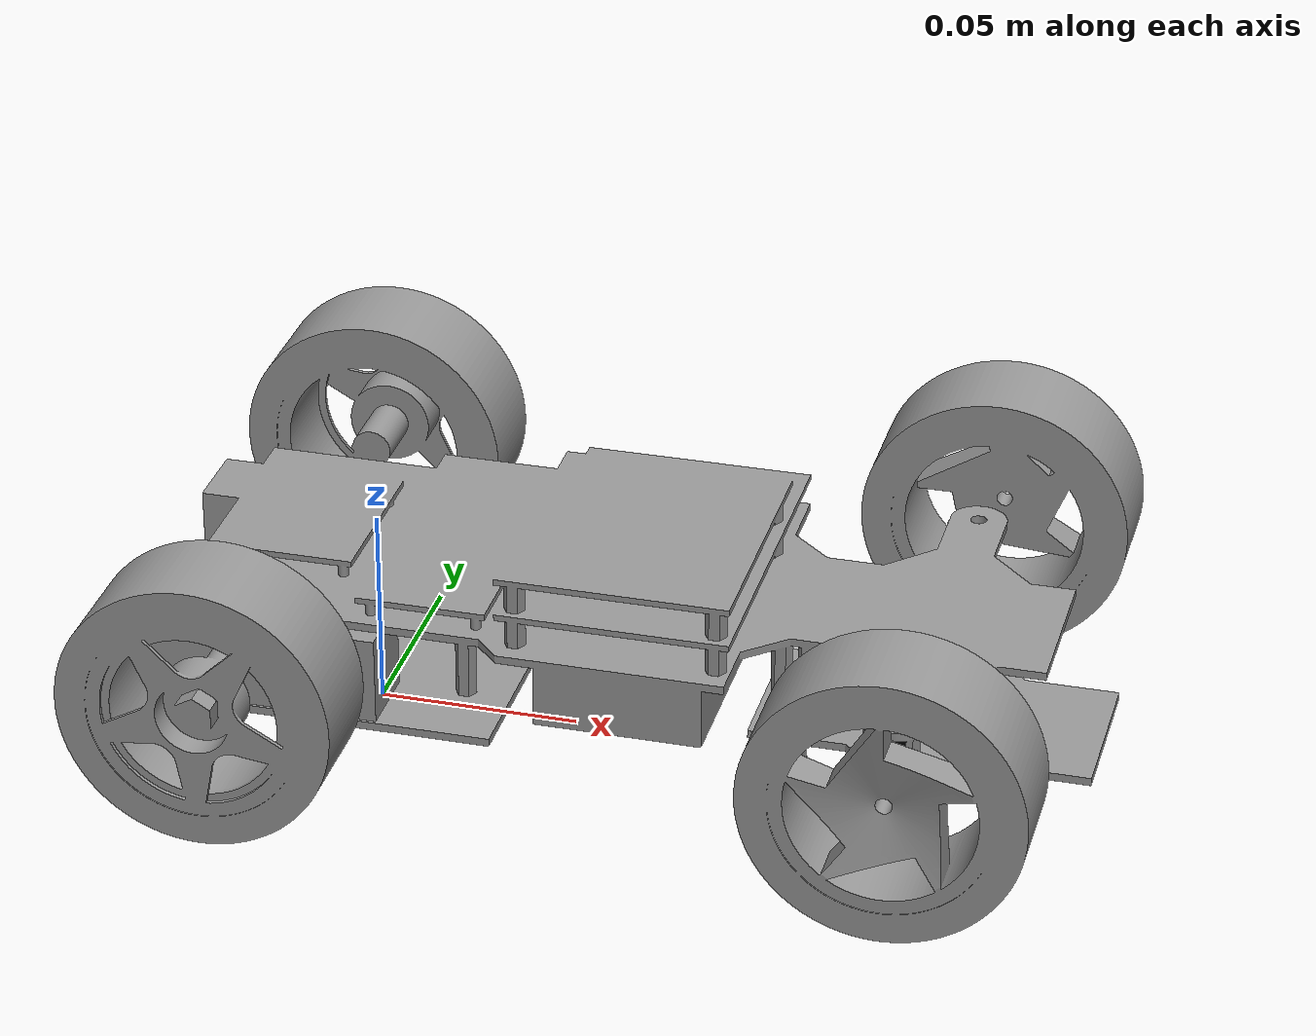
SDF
<?xml version='1.0'?>
<sdf version='1.6'>
  <model name='PiCar-X'>
    <link name='chassis'>
      <inertial>
        <mass>1</mass>
        <inertia>
          <ixx>0.166667</ixx>
          <ixy>0</ixy>
          <ixz>0</ixz>
          <iyy>0.166667</iyy>
          <iyz>0</iyz>
          <izz>0.166667</izz>
        </inertia>
        <pose frame=''>0 0 0 0 -0 0</pose>
      </inertial>
      <pose frame=''>0 0 0.015 0 -0 0</pose>
      <gravity>1</gravity>
      <self_collide>0</self_collide>
      <kinematic>0</kinematic>
      <enable_wind>0</enable_wind>
      <visual name='visual'>
        <pose frame=''>0 0 0 0 -0 0</pose>
        <geometry>
          <mesh>
            <uri>/root/catkin_ws/src/picarx_description/meshes/Chassis.dae</uri>
            <scale>1 1 1</scale>
          </mesh>
        </geometry>
        <material>
          <lighting>1</lighting>
          <script>
            <uri>file://media/materials/scripts/gazebo.material</uri>
            <name>Gazebo/Grey</name>
          </script>
          <shader type='vertex'>
            <normal_map>__default__</normal_map>
          </shader>
          <ambient>0.3 0.3 0.3 1</ambient>
          <diffuse>0.7 0.7 0.7 1</diffuse>
          <specular>0.01 0.01 0.01 1</specular>
          <emissive>0 0 0 1</emissive>
        </material>
        <transparency>0</transparency>
        <cast_shadows>1</cast_shadows>
      </visual>
      <collision name='collision'>
        <laser_retro>0</laser_retro>
        <max_contacts>10</max_contacts>
        <pose frame=''>0 0 0 0 -0 0</pose>
        <geometry>
          <mesh>
            <uri>/root/catkin_ws/src/picarx_description/meshes/Chassis.dae</uri>
            <scale>1 1 1</scale>
          </mesh>
        </geometry>
        <surface>
          <friction>
            <ode>
              <mu>1</mu>
              <mu2>1</mu2>
              <fdir1>0 0 0</fdir1>
              <slip1>0</slip1>
              <slip2>0</slip2>
            </ode>
            <torsional>
              <coefficient>1</coefficient>
              <patch_radius>0</patch_radius>
              <surface_radius>0</surface_radius>
              <use_patch_radius>1</use_patch_radius>
              <ode>
                <slip>0</slip>
              </ode>
            </torsional>
          </friction>
          <bounce>
            <restitution_coefficient>0</restitution_coefficient>
            <threshold>1e+06</threshold>
          </bounce>
          <contact>
            <collide_without_contact>0</collide_without_contact>
            <collide_without_contact_bitmask>1</collide_without_contact_bitmask>
            <collide_bitmask>1</collide_bitmask>
            <ode>
              <soft_cfm>0</soft_cfm>
              <soft_erp>0.2</soft_erp>
              <kp>1e+13</kp>
              <kd>1</kd>
              <max_vel>0.01</max_vel>
              <min_depth>0</min_depth>
            </ode>
            <bullet>
              <split_impulse>1</split_impulse>
              <split_impulse_penetration_threshold>-0.01</split_impulse_penetration_threshold>
              <soft_cfm>0</soft_cfm>
              <soft_erp>0.2</soft_erp>
              <kp>1e+13</kp>
              <kd>1</kd>
            </bullet>
          </contact>
        </surface>
      </collision>
    </link>
    <link name='wheelrearright'>
      <inertial>
        <mass>1</mass>
        <inertia>
          <ixx>0.166667</ixx>
          <ixy>0</ixy>
          <ixz>0</ixz>
          <iyy>0.166667</iyy>
          <iyz>0</iyz>
          <izz>0.166667</izz>
        </inertia>
        <pose frame=''>0 0 0 0 -0 0</pose>
      </inertial>
      <pose frame=''>-0.019498 0.069262 0.03808 -1.5708 -0 0</pose>
      <gravity>1</gravity>
      <self_collide>0</self_collide>
      <kinematic>0</kinematic>
      <enable_wind>0</enable_wind>
      <visual name='visual'>
        <pose frame=''>0 0 0 0 -0 0</pose>
        <geometry>
          <mesh>
            <uri>/root/catkin_ws/src/picarx_description/meshes/WheelRearRight.dae</uri>
            <scale>1 1 1</scale>
          </mesh>
        </geometry>
        <material>
          <lighting>1</lighting>
          <script>
            <uri>file://media/materials/scripts/gazebo.material</uri>
            <name>Gazebo/Grey</name>
          </script>
          <shader type='vertex'>
            <normal_map>__default__</normal_map>
          </shader>
          <ambient>0.3 0.3 0.3 1</ambient>
          <diffuse>0.7 0.7 0.7 1</diffuse>
          <specular>0.01 0.01 0.01 1</specular>
          <emissive>0 0 0 1</emissive>
        </material>
        <transparency>0</transparency>
        <cast_shadows>1</cast_shadows>
      </visual>
      <collision name='collision'>
        <laser_retro>0</laser_retro>
        <max_contacts>10</max_contacts>
        <pose frame=''>0 0 0 0 -0 0</pose>
        <geometry>
          <mesh>
            <uri>/root/catkin_ws/src/picarx_description/meshes/WheelRearRight.dae</uri>
            <scale>1 1 1</scale>
          </mesh>
        </geometry>
        <surface>
          <friction>
            <ode>
              <mu>1</mu>
              <mu2>1</mu2>
              <fdir1>0 0 0</fdir1>
              <slip1>0</slip1>
              <slip2>0</slip2>
            </ode>
            <torsional>
              <coefficient>1</coefficient>
              <patch_radius>0</patch_radius>
              <surface_radius>0</surface_radius>
              <use_patch_radius>1</use_patch_radius>
              <ode>
                <slip>0</slip>
              </ode>
            </torsional>
          </friction>
          <bounce>
            <restitution_coefficient>0</restitution_coefficient>
            <threshold>1e+06</threshold>
          </bounce>
          <contact>
            <collide_without_contact>0</collide_without_contact>
            <collide_without_contact_bitmask>1</collide_without_contact_bitmask>
            <collide_bitmask>1</collide_bitmask>
            <ode>
              <soft_cfm>0</soft_cfm>
              <soft_erp>0.2</soft_erp>
              <kp>1e+13</kp>
              <kd>1</kd>
              <max_vel>0.01</max_vel>
              <min_depth>0</min_depth>
            </ode>
            <bullet>
              <split_impulse>1</split_impulse>
              <split_impulse_penetration_threshold>-0.01</split_impulse_penetration_threshold>
              <soft_cfm>0</soft_cfm>
              <soft_erp>0.2</soft_erp>
              <kp>1e+13</kp>
              <kd>1</kd>
            </bullet>
          </contact>
        </surface>
      </collision>
    </link>
    <link name='wheelrearleft'>
      <inertial>
        <mass>1</mass>
        <inertia>
          <ixx>0.166667</ixx>
          <ixy>0</ixy>
          <ixz>0</ixz>
          <iyy>0.166667</iyy>
          <iyz>0</iyz>
          <izz>0.166667</izz>
        </inertia>
        <pose frame=''>0 0 0 0 -0 0</pose>
      </inertial>
      <pose frame=''>-0.019506 -0.069252 0.03808 -1.5708 -0 0</pose>
      <gravity>1</gravity>
      <self_collide>0</self_collide>
      <kinematic>0</kinematic>
      <enable_wind>0</enable_wind>
      <visual name='visual'>
        <pose frame=''>0 0 0 0 -0 0</pose>
        <geometry>
          <mesh>
            <uri>/root/catkin_ws/src/picarx_description/meshes/WheelRearLeft.dae</uri>
            <scale>1 1 1</scale>
          </mesh>
        </geometry>
        <material>
          <lighting>1</lighting>
          <script>
            <uri>file://media/materials/scripts/gazebo.material</uri>
            <name>Gazebo/Grey</name>
          </script>
          <shader type='vertex'>
            <normal_map>__default__</normal_map>
          </shader>
          <ambient>0.3 0.3 0.3 1</ambient>
          <diffuse>0.7 0.7 0.7 1</diffuse>
          <specular>0.01 0.01 0.01 1</specular>
          <emissive>0 0 0 1</emissive>
        </material>
        <transparency>0</transparency>
        <cast_shadows>1</cast_shadows>
      </visual>
      <collision name='collision'>
        <laser_retro>0</laser_retro>
        <max_contacts>10</max_contacts>
        <pose frame=''>0 0 0 0 -0 0</pose>
        <geometry>
          <mesh>
            <uri>/root/catkin_ws/src/picarx_description/meshes/WheelRearLeft.dae</uri>
            <scale>1 1 1</scale>
          </mesh>
        </geometry>
        <surface>
          <friction>
            <ode>
              <mu>1</mu>
              <mu2>1</mu2>
              <fdir1>0 0 0</fdir1>
              <slip1>0</slip1>
              <slip2>0</slip2>
            </ode>
            <torsional>
              <coefficient>1</coefficient>
              <patch_radius>0</patch_radius>
              <surface_radius>0</surface_radius>
              <use_patch_radius>1</use_patch_radius>
              <ode>
                <slip>0</slip>
              </ode>
            </torsional>
          </friction>
          <bounce>
            <restitution_coefficient>0</restitution_coefficient>
            <threshold>1e+06</threshold>
          </bounce>
          <contact>
            <collide_without_contact>0</collide_without_contact>
            <collide_without_contact_bitmask>1</collide_without_contact_bitmask>
            <collide_bitmask>1</collide_bitmask>
            <ode>
              <soft_cfm>0</soft_cfm>
              <soft_erp>0.2</soft_erp>
              <kp>1e+13</kp>
              <kd>1</kd>
              <max_vel>0.01</max_vel>
              <min_depth>0</min_depth>
            </ode>
            <bullet>
              <split_impulse>1</split_impulse>
              <split_impulse_penetration_threshold>-0.01</split_impulse_penetration_threshold>
              <soft_cfm>0</soft_cfm>
              <soft_erp>0.2</soft_erp>
              <kp>1e+13</kp>
              <kd>1</kd>
            </bullet>
          </contact>
        </surface>
      </collision>
    </link>
    <link name='wheelfrontleft'>
      <inertial>
        <mass>1</mass>
        <inertia>
          <ixx>0.166667</ixx>
          <ixy>0</ixy>
          <ixz>0</ixz>
          <iyy>0.166667</iyy>
          <iyz>0</iyz>
          <izz>0.166667</izz>
        </inertia>
        <pose frame=''>0 0 0 0 -0 0</pose>
      </inertial>
      <pose frame=''>0.142429 -0.068163 0.03808 1.5708 -0 0</pose>
      <gravity>1</gravity>
      <self_collide>0</self_collide>
      <kinematic>0</kinematic>
      <enable_wind>0</enable_wind>
      <visual name='visual'>
        <pose frame=''>0 0 0 0 -0 0</pose>
        <geometry>
          <mesh>
            <uri>/root/catkin_ws/src/picarx_description/meshes/WheelFrontLeft.dae</uri>
            <scale>1 1 1</scale>
          </mesh>
        </geometry>
        <material>
          <lighting>1</lighting>
          <script>
            <uri>file://media/materials/scripts/gazebo.material</uri>
            <name>Gazebo/Grey</name>
          </script>
          <shader type='vertex'>
            <normal_map>__default__</normal_map>
          </shader>
          <ambient>0.3 0.3 0.3 1</ambient>
          <diffuse>0.7 0.7 0.7 1</diffuse>
          <specular>0.01 0.01 0.01 1</specular>
          <emissive>0 0 0 1</emissive>
        </material>
        <transparency>0</transparency>
        <cast_shadows>1</cast_shadows>
      </visual>
      <collision name='collision'>
        <laser_retro>0</laser_retro>
        <max_contacts>10</max_contacts>
        <pose frame=''>0 0 0 0 -0 0</pose>
        <geometry>
          <mesh>
            <uri>/root/catkin_ws/src/picarx_description/meshes/WheelFrontLeft.dae</uri>
            <scale>1 1 1</scale>
          </mesh>
        </geometry>
        <surface>
          <friction>
            <ode>
              <mu>1</mu>
              <mu2>1</mu2>
              <fdir1>0 0 0</fdir1>
              <slip1>0</slip1>
              <slip2>0</slip2>
            </ode>
            <torsional>
              <coefficient>1</coefficient>
              <patch_radius>0</patch_radius>
              <surface_radius>0</surface_radius>
              <use_patch_radius>1</use_patch_radius>
              <ode>
                <slip>0</slip>
              </ode>
            </torsional>
          </friction>
          <bounce>
            <restitution_coefficient>0</restitution_coefficient>
            <threshold>1e+06</threshold>
          </bounce>
          <contact>
            <collide_without_contact>0</collide_without_contact>
            <collide_without_contact_bitmask>1</collide_without_contact_bitmask>
            <collide_bitmask>1</collide_bitmask>
            <ode>
              <soft_cfm>0</soft_cfm>
              <soft_erp>0.2</soft_erp>
              <kp>1e+13</kp>
              <kd>1</kd>
              <max_vel>0.01</max_vel>
              <min_depth>0</min_depth>
            </ode>
            <bullet>
              <split_impulse>1</split_impulse>
              <split_impulse_penetration_threshold>-0.01</split_impulse_penetration_threshold>
              <soft_cfm>0</soft_cfm>
              <soft_erp>0.2</soft_erp>
              <kp>1e+13</kp>
              <kd>1</kd>
            </bullet>
          </contact>
        </surface>
      </collision>
    </link>
    <link name='wheelfrontright'>
      <inertial>
        <mass>1</mass>
        <inertia>
          <ixx>0.166667</ixx>
          <ixy>0</ixy>
          <ixz>0</ixz>
          <iyy>0.166667</iyy>
          <iyz>0</iyz>
          <izz>0.166667</izz>
        </inertia>
        <pose frame=''>0 0 0 0 -0 0</pose>
      </inertial>
      <pose frame=''>0.142429 0.068833 0.03808 1.5708 -0 0</pose>
      <gravity>1</gravity>
      <self_collide>0</self_collide>
      <kinematic>0</kinematic>
      <enable_wind>0</enable_wind>
      <visual name='visual'>
        <pose frame=''>0 0 0 0 -0 0</pose>
        <geometry>
          <mesh>
            <uri>/root/catkin_ws/src/picarx_description/meshes/WheelFrontRight.dae</uri>
            <scale>1 1 1</scale>
          </mesh>
        </geometry>
        <material>
          <lighting>1</lighting>
          <script>
            <uri>file://media/materials/scripts/gazebo.material</uri>
            <name>Gazebo/Grey</name>
          </script>
          <shader type='vertex'>
            <normal_map>__default__</normal_map>
          </shader>
          <ambient>0.3 0.3 0.3 1</ambient>
          <diffuse>0.7 0.7 0.7 1</diffuse>
          <specular>0.01 0.01 0.01 1</specular>
          <emissive>0 0 0 1</emissive>
        </material>
        <transparency>0</transparency>
        <cast_shadows>1</cast_shadows>
      </visual>
      <collision name='collision'>
        <laser_retro>0</laser_retro>
        <max_contacts>10</max_contacts>
        <pose frame=''>0 0 0 0 -0 0</pose>
        <geometry>
          <mesh>
            <uri>/root/catkin_ws/src/picarx_description/meshes/WheelFrontRight.dae</uri>
            <scale>1 1 1</scale>
          </mesh>
        </geometry>
        <surface>
          <friction>
            <ode>
              <mu>1</mu>
              <mu2>1</mu2>
              <fdir1>0 0 0</fdir1>
              <slip1>0</slip1>
              <slip2>0</slip2>
            </ode>
            <torsional>
              <coefficient>1</coefficient>
              <patch_radius>0</patch_radius>
              <surface_radius>0</surface_radius>
              <use_patch_radius>1</use_patch_radius>
              <ode>
                <slip>0</slip>
              </ode>
            </torsional>
          </friction>
          <bounce>
            <restitution_coefficient>0</restitution_coefficient>
            <threshold>1e+06</threshold>
          </bounce>
          <contact>
            <collide_without_contact>0</collide_without_contact>
            <collide_without_contact_bitmask>1</collide_without_contact_bitmask>
            <collide_bitmask>1</collide_bitmask>
            <ode>
              <soft_cfm>0</soft_cfm>
              <soft_erp>0.2</soft_erp>
              <kp>1e+13</kp>
              <kd>1</kd>
              <max_vel>0.01</max_vel>
              <min_depth>0</min_depth>
            </ode>
            <bullet>
              <split_impulse>1</split_impulse>
              <split_impulse_penetration_threshold>-0.01</split_impulse_penetration_threshold>
              <soft_cfm>0</soft_cfm>
              <soft_erp>0.2</soft_erp>
              <kp>1e+13</kp>
              <kd>1</kd>
            </bullet>
          </contact>
        </surface>
      </collision>
    </link>
    <link name='steer_fl'>
      <self_collide>0</self_collide>
      <inertial>
        <inertia>
          <ixx>0</ixx>
          <ixy>0</ixy>
          <ixz>0</ixz>
          <iyy>0</iyy>
          <iyz>0</iyz>
          <izz>0</izz>
        </inertia>
        <mass>1</mass>
        <pose frame=''>0 0 0 0 -0 0</pose>
      </inertial>
      <enable_wind>0</enable_wind>
      <kinematic>0</kinematic>
      <pose frame=''>0.137 0.049 0.029 0 -0 0</pose>
      <gravity>1</gravity>
      <visual name='visual'>
        <geometry>
          <cylinder>
            <radius>0.005</radius>
            <length>0.025</length>
          </cylinder>
        </geometry>
        <pose frame=''>0 0 0 0 -0 0</pose>
        <transparency>0</transparency>
        <cast_shadows>1</cast_shadows>
        <material>
          <shader type='vertex'>
            <normal_map>__default__</normal_map>
          </shader>
          <script>
            <name>ModelPreview_3::steer_fl::visual_MATERIAL_</name>
            <uri>__default__</uri>
          </script>
          <ambient>0 0 0 1</ambient>
          <diffuse>0 0 0 1</diffuse>
          <specular>0 0 0 1</specular>
          <emissive>0 0 0 1</emissive>
        </material>
      </visual>
    </link>
    <link name='steer_fr'>
      <self_collide>0</self_collide>
      <inertial>
        <inertia>
          <ixx>0</ixx>
          <ixy>0</ixy>
          <ixz>0</ixz>
          <iyy>0</iyy>
          <iyz>0</iyz>
          <izz>0</izz>
        </inertia>
        <mass>1</mass>
        <pose frame=''>0 0 0 0 -0 0</pose>
      </inertial>
      <enable_wind>0</enable_wind>
      <kinematic>0</kinematic>
      <pose frame=''>0.137 -0.049998 0.029 0 -0 0</pose>
      <gravity>1</gravity>
      <visual name='visual'>
        <geometry>
          <cylinder>
            <radius>0.005</radius>
            <length>0.025</length>
          </cylinder>
        </geometry>
        <pose frame=''>0 0 0 0 -0 0</pose>
        <transparency>0</transparency>
        <cast_shadows>1</cast_shadows>
        <material>
          <shader type='vertex'>
            <normal_map>__default__</normal_map>
          </shader>
          <script>
            <name>ModelPreview_3::steer_fr::visual_MATERIAL_</name>
            <uri>__default__</uri>
          </script>
          <ambient>0 0 0 1</ambient>
          <diffuse>0 0 0 1</diffuse>
          <specular>0 0 0 1</specular>
          <emissive>0 0 0 1</emissive>
        </material>
      </visual>
    </link>
    <joint name='chassis_rear_left_joint' type='revolute'>
      <parent>chassis</parent>
      <child>wheelrearright</child>
      <pose frame=''>0 0 0 0 -0 0</pose>
      <axis>
        <xyz>0 0 -1</xyz>
        <use_parent_model_frame>0</use_parent_model_frame>
        <limit>
          <lower>-1.79769e+308</lower>
          <upper>1.79769e+308</upper>
          <effort>-1</effort>
          <velocity>-1</velocity>
        </limit>
        <dynamics>
          <spring_reference>0</spring_reference>
          <spring_stiffness>0</spring_stiffness>
          <damping>0</damping>
          <friction>0</friction>
        </dynamics>
      </axis>
      <physics>
        <ode>
          <limit>
            <cfm>0</cfm>
            <erp>0.2</erp>
          </limit>
          <suspension>
            <cfm>0</cfm>
            <erp>0.2</erp>
          </suspension>
        </ode>
      </physics>
    </joint>
    <joint name='chassis_steer_front_right_joint' type='revolute'>
      <parent>chassis</parent>
      <child>steer_fr</child>
      <pose frame=''>0 0 0 0 -0 0</pose>
      <axis>
        <xyz>0 0 1</xyz>
        <use_parent_model_frame>0</use_parent_model_frame>
        <limit>
          <lower>-1.79769e+308</lower>
          <upper>1.79769e+308</upper>
          <effort>-1</effort>
          <velocity>-1</velocity>
        </limit>
        <dynamics>
          <spring_reference>0</spring_reference>
          <spring_stiffness>0</spring_stiffness>
          <damping>0</damping>
          <friction>0</friction>
        </dynamics>
      </axis>
      <physics>
        <ode>
          <limit>
            <cfm>0</cfm>
            <erp>0.2</erp>
          </limit>
          <suspension>
            <cfm>0</cfm>
            <erp>0.2</erp>
          </suspension>
        </ode>
      </physics>
    </joint>
    <joint name='chassis_rear_right_joint' type='revolute'>
      <parent>chassis</parent>
      <child>wheelrearleft</child>
      <pose frame=''>0 0 0 0 -0 0</pose>
      <axis>
        <xyz>0 0 -1</xyz>
        <use_parent_model_frame>0</use_parent_model_frame>
        <limit>
          <lower>-1.79769e+308</lower>
          <upper>1.79769e+308</upper>
          <effort>-1</effort>
          <velocity>-1</velocity>
        </limit>
        <dynamics>
          <spring_reference>0</spring_reference>
          <spring_stiffness>0</spring_stiffness>
          <damping>0</damping>
          <friction>0</friction>
        </dynamics>
      </axis>
      <physics>
        <ode>
          <limit>
            <cfm>0</cfm>
            <erp>0.2</erp>
          </limit>
          <suspension>
            <cfm>0</cfm>
            <erp>0.2</erp>
          </suspension>
        </ode>
      </physics>
    </joint>
    <joint name='steer_front_right_wheel_front_left_joint' type='revolute'>
      <parent>steer_fr</parent>
      <child>wheelfrontleft</child>
      <pose frame=''>0 0 0 0 -0 0</pose>
      <axis>
        <xyz>0 0 1</xyz>
        <use_parent_model_frame>0</use_parent_model_frame>
        <limit>
          <lower>-1.79769e+308</lower>
          <upper>1.79769e+308</upper>
          <effort>-1</effort>
          <velocity>-1</velocity>
        </limit>
        <dynamics>
          <spring_reference>0</spring_reference>
          <spring_stiffness>0</spring_stiffness>
          <damping>0</damping>
          <friction>0</friction>
        </dynamics>
      </axis>
      <physics>
        <ode>
          <limit>
            <cfm>0</cfm>
            <erp>0.2</erp>
          </limit>
          <suspension>
            <cfm>0</cfm>
            <erp>0.2</erp>
          </suspension>
        </ode>
      </physics>
    </joint>
    <joint name='steer_front_left_wheel_front_right_joint' type='revolute'>
      <parent>steer_fl</parent>
      <child>wheelfrontright</child>
      <pose frame=''>0 0 0 0 -0 0</pose>
      <axis>
        <xyz>0 0 1</xyz>
        <use_parent_model_frame>0</use_parent_model_frame>
        <limit>
          <lower>-1.79769e+308</lower>
          <upper>1.79769e+308</upper>
          <effort>-1</effort>
          <velocity>-1</velocity>
        </limit>
        <dynamics>
          <spring_reference>0</spring_reference>
          <spring_stiffness>0</spring_stiffness>
          <damping>0</damping>
          <friction>0</friction>
        </dynamics>
      </axis>
      <physics>
        <ode>
          <limit>
            <cfm>0</cfm>
            <erp>0.2</erp>
          </limit>
          <suspension>
            <cfm>0</cfm>
            <erp>0.2</erp>
          </suspension>
        </ode>
      </physics>
    </joint>
    <joint name='chassis_steer_front_left_joint' type='revolute'>
      <parent>chassis</parent>
      <child>steer_fl</child>
      <pose frame=''>0 0 0 0 -0 0</pose>
      <axis>
        <xyz>0 0 1</xyz>
        <use_parent_model_frame>0</use_parent_model_frame>
        <limit>
          <lower>-1.79769e+308</lower>
          <upper>1.79769e+308</upper>
          <effort>-1</effort>
          <velocity>-1</velocity>
        </limit>
        <dynamics>
          <spring_reference>0</spring_reference>
          <spring_stiffness>0</spring_stiffness>
          <damping>0</damping>
          <friction>0</friction>
        </dynamics>
      </axis>
      <physics>
        <ode>
          <limit>
            <cfm>0</cfm>
            <erp>0.2</erp>
          </limit>
          <suspension>
            <cfm>0</cfm>
            <erp>0.2</erp>
          </suspension>
        </ode>
      </physics>
    </joint>
    <static>0</static>
    <allow_auto_disable>1</allow_auto_disable>
  </model>
</sdf>
